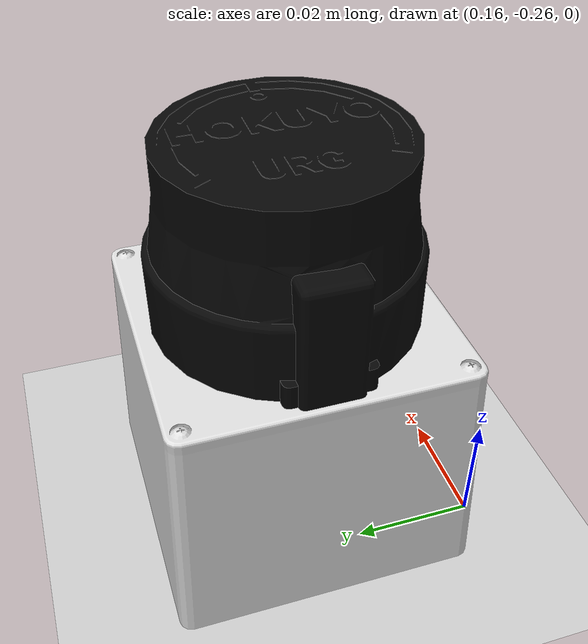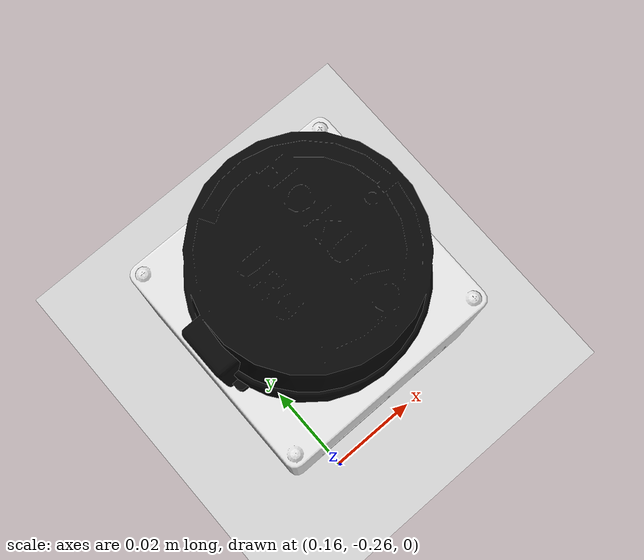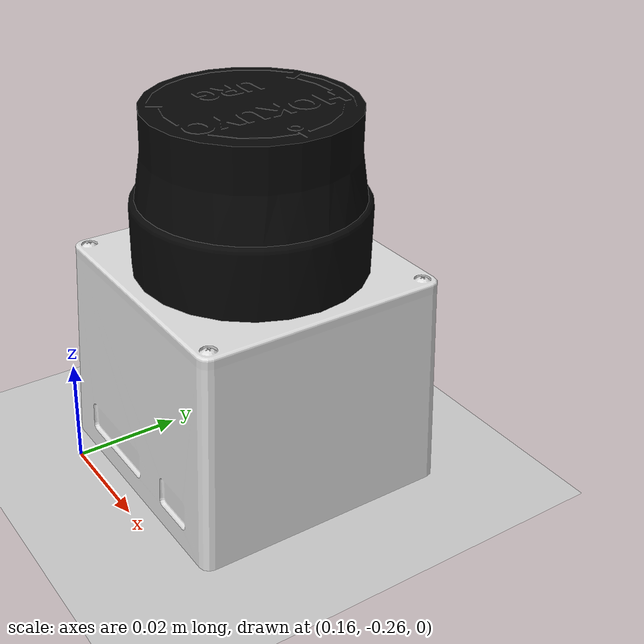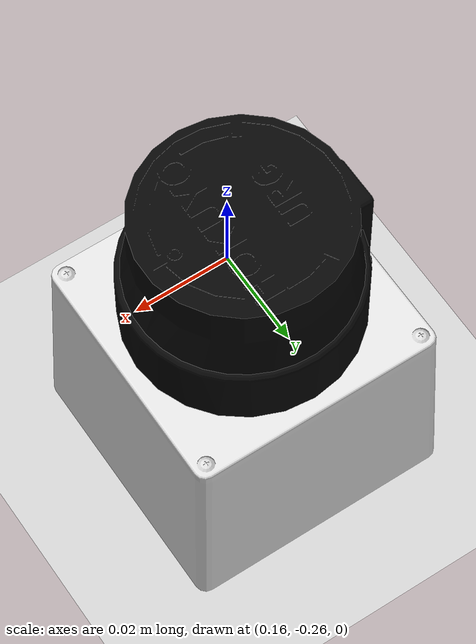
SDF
<sdf version="1.6">
 <world name="default">
  <light name="sun" type="directional">
   <pose>0 0 10 0 -0 0</pose>
   <diffuse>0.8 0.8 0.8 1</diffuse>
   <specular>0.2 0.2 0.2 1</specular>
   <attenuation>
    <range>1000</range>
    <constant>0.9</constant>
    <linear>0.01</linear>
    <quadratic>0.001</quadratic>
   </attenuation>
   <direction>-0.5 0.1 -0.9</direction>
  </light>
  <model name="ground_plane">
   <static>1</static>
   <link name="link">
    <collision name="collision">
     <geometry><plane><normal>0 0 1</normal><size>100 100</size></plane></geometry>
     <surface>
      <contact><collide_bitmask>65535</collide_bitmask></contact>
      <friction><ode><mu>100</mu><mu2>50</mu2></ode></friction>
     </surface>
    </collision>
    <visual name="visual">
     <cast_shadows>0</cast_shadows>
     <geometry><plane><normal>0 0 1</normal><size>100 100</size></plane></geometry>
     <material>
      <script><uri>file://media/materials/scripts/gazebo.material</uri><name>Gazebo/Grey</name></script>
     </material>
    </visual>
   </link>
  </model>
  <gravity>0 0 -9.8</gravity>
  <magnetic_field>6e-06 2.3e-05 -4.2e-05</magnetic_field>
  <atmosphere type="adiabatic"/>
  <physics name="default_physics" default="0" type="ode">
   <max_step_size>0.001</max_step_size>
   <real_time_factor>1</real_time_factor>
   <real_time_update_rate>1000</real_time_update_rate>
  </physics>
  <scene><ambient>0.4 0.4 0.4 1</ambient><background>0.7 0.7 0.7 1</background><shadows>1</shadows></scene>
  <audio><device>default</device></audio>
  <spherical_coordinates>
   <surface_model>EARTH_WGS84</surface_model>
   <latitude_deg>0</latitude_deg>
   <longitude_deg>0</longitude_deg>
   <elevation>0</elevation>
   <heading_deg>0</heading_deg>
  </spherical_coordinates>
  <model name="hokuyo_ros">
   <pose>0.175763 -0.231361 0.035 -4e-06 -2e-06 -0</pose>
   <link name="hokuyo_link">
    <inertial>
     <mass>0.1</mass>
     <inertia><ixx>1</ixx><ixy>0</ixy><ixz>0</ixz><iyy>1</iyy><iyz>0</iyz><izz>1</izz></inertia>
    </inertial>
    <visual name="visual"><geometry><mesh><uri>model://hokuyo/meshes/hokuyo.dae</uri></mesh></geometry></visual>
    <collision name="collision-base">
     <pose>0 0 -0.0145 0 -0 0</pose>
     <geometry><box><size>0.05 0.05 0.041</size></box></geometry>
    </collision>
    <collision name="collision-top">
     <pose>0 0 0.0205 0 -0 0</pose>
     <geometry><cylinder><radius>0.021</radius><length>0.029</length></cylinder></geometry>
    </collision>
    <sensor name="head_hokuyo_sensor" type="ray">
     <pose>0.01 0 0.0175 0 -0 0</pose>
     <ray>
      <scan>
       <horizontal>
        <samples>640</samples>
        <resolution>1</resolution>
        <min_angle>-2.26889</min_angle>
        <max_angle>2.2689</max_angle>
       </horizontal>
       <vertical><samples>1</samples><min_angle>0</min_angle><max_angle>0</max_angle></vertical>
      </scan>
      <range><min>0.08</min><max>10</max><resolution>0.01</resolution></range>
     </ray>
     <plugin name="gazebo_ros_head_hokuyo_controller" filename="libgazebo_ros_laser.so">
      <topicName>/mybot/laser/scan</topicName>
      <frameName>hokuyo_link</frameName>
     </plugin>
     <always_on>1</always_on>
     <update_rate>30</update_rate>
     <visualize>1</visualize>
    </sensor>
   </link>
  </model>
 </world>
</sdf>
